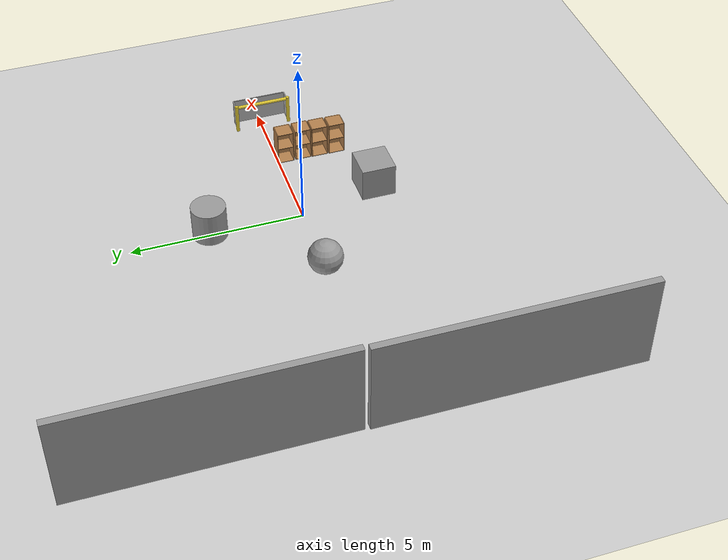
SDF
<sdf version="1.7">
 <world name="default">
  <light name="sun" type="directional">
   <pose>0 0 10 0 -0 0</pose>
   <diffuse>0.8 0.8 0.8 1</diffuse>
   <specular>0.2 0.2 0.2 1</specular>
   <attenuation>
    <range>1000</range>
    <constant>0.9</constant>
    <linear>0.01</linear>
    <quadratic>0.001</quadratic>
   </attenuation>
   <direction>-0.5 0.1 -0.9</direction>
   <spot><inner_angle>0</inner_angle><outer_angle>0</outer_angle><falloff>0</falloff></spot>
  </light>
  <model name="ground_plane">
   <static>1</static>
   <link name="link">
    <collision name="collision">
     <geometry><plane><normal>0 0 1</normal><size>100 100</size></plane></geometry>
     <surface>
      <contact><collide_bitmask>65535</collide_bitmask></contact>
      <friction><ode><mu>100</mu><mu2>50</mu2></ode></friction>
     </surface>
    </collision>
    <visual name="visual">
     <cast_shadows>0</cast_shadows>
     <geometry><plane><normal>0 0 1</normal><size>100 100</size></plane></geometry>
     <material>
      <script><uri>file://media/materials/scripts/gazebo.material</uri><name>Gazebo/Grey</name></script>
     </material>
    </visual>
   </link>
  </model>
  <gravity>0 0 -9.8</gravity>
  <magnetic_field>6e-06 2.3e-05 -4.2e-05</magnetic_field>
  <atmosphere type="adiabatic"/>
  <physics type="ode">
   <max_step_size>0.001</max_step_size>
   <real_time_factor>1</real_time_factor>
   <real_time_update_rate>1000</real_time_update_rate>
  </physics>
  <scene><ambient>0.4 0.4 0.4 1</ambient><background>0.7 0.7 0.7 1</background><shadows>1</shadows></scene>
  <audio><device>default</device></audio>
  <spherical_coordinates>
   <surface_model>EARTH_WGS84</surface_model>
   <latitude_deg>0</latitude_deg>
   <longitude_deg>0</longitude_deg>
   <elevation>0</elevation>
   <heading_deg>0</heading_deg>
  </spherical_coordinates>
  <model name="unit_sphere">
   <pose>-2.36502 0.054221 0.51 0 -0 0</pose>
   <link name="link">
    <inertial>
     <mass>1</mass>
     <inertia><ixx>0.1</ixx><ixy>0</ixy><ixz>0</ixz><iyy>0.1</iyy><iyz>0</iyz><izz>0.1</izz></inertia>
    </inertial>
    <collision name="collision"><geometry><sphere><radius>0.5</radius></sphere></geometry></collision>
    <visual name="visual">
     <geometry><sphere><radius>0.5</radius></sphere></geometry>
     <material>
      <script><name>Gazebo/Grey</name><uri>file://media/materials/scripts/gazebo.material</uri></script>
     </material>
    </visual>
   </link>
  </model>
  <model name="unit_cylinder">
   <pose>0.084518 2.70497 0.509991 -0 -0 -0</pose>
   <link name="link">
    <inertial>
     <mass>1</mass>
     <inertia><ixx>0.145833</ixx><ixy>0</ixy><ixz>0</ixz><iyy>0.145833</iyy><iyz>0</iyz><izz>0.125</izz></inertia>
    </inertial>
    <collision name="collision">
     <geometry><cylinder><radius>0.5</radius><length>1</length></cylinder></geometry>
    </collision>
    <visual name="visual">
     <geometry><cylinder><radius>0.5</radius><length>1</length></cylinder></geometry>
     <material>
      <script><name>Gazebo/Grey</name><uri>file://media/materials/scripts/gazebo.material</uri></script>
     </material>
    </visual>
   </link>
  </model>
  <model name="unit_box">
   <pose>0.628726 -2.33552 0.51 0 -0 0</pose>
   <link name="link">
    <inertial>
     <mass>1</mass>
     <inertia>
      <ixx>0.166667</ixx>
      <ixy>0</ixy>
      <ixz>0</ixz>
      <iyy>0.166667</iyy>
      <iyz>0</iyz>
      <izz>0.166667</izz>
     </inertia>
    </inertial>
    <collision name="collision"><geometry><box><size>1 1 1</size></box></geometry></collision>
    <visual name="visual">
     <geometry><box><size>1 1 1</size></box></geometry>
     <material>
      <script><name>Gazebo/Grey</name><uri>file://media/materials/scripts/gazebo.material</uri></script>
     </material>
    </visual>
   </link>
  </model>
  <model name="cabinet">
   <static>1</static>
   <link name="cabinet_bottom_plate">
    <inertial>
     <pose>0 0 -1 0 -0 0</pose>
     <inertia><ixx>2.05</ixx><ixy>0</ixy><ixz>0</ixz><iyy>2.05</iyy><iyz>0</iyz><izz>2.05</izz></inertia>
     <mass>25</mass>
    </inertial>
    <collision name="cabinet_bottom_plate_geom">
     <pose>0 0 0.01 0 -0 0</pose>
     <geometry><box><size>0.45 0.45 0.02</size></box></geometry>
    </collision>
    <visual name="cabinet_bottom_plate_geom_visual">
     <pose>0 0 0.01 0 -0 0</pose>
     <geometry><box><size>0.45 0.45 0.02</size></box></geometry>
     <material>
      <script><uri>file://media/materials/scripts/gazebo.material</uri><name>Gazebo/Wood</name></script>
     </material>
    </visual>
    <collision name="cabinet_bottom_plate_geom_cabinet_back_plate">
     <pose>0.235 0 0.51 0 -0 0</pose>
     <geometry><box><size>0.02 0.45 1.02</size></box></geometry>
    </collision>
    <visual name="cabinet_bottom_plate_geom_cabinet_back_plate_visual">
     <pose>0.235 0 0.51 0 -0 0</pose>
     <geometry><box><size>0.02 0.45 1.02</size></box></geometry>
     <material>
      <script><uri>file://media/materials/scripts/gazebo.material</uri><name>Gazebo/Wood</name></script>
     </material>
    </visual>
    <collision name="cabinet_bottom_plate_geom_cabinet_left_plate">
     <pose>0 0.235 0.51 0 -0 0</pose>
     <geometry><box><size>0.45 0.02 1.02</size></box></geometry>
    </collision>
    <visual name="cabinet_bottom_plate_geom_cabinet_left_plate_visual">
     <pose>0 0.235 0.51 0 -0 0</pose>
     <geometry><box><size>0.45 0.02 1.02</size></box></geometry>
     <material>
      <script><uri>file://media/materials/scripts/gazebo.material</uri><name>Gazebo/Wood</name></script>
     </material>
    </visual>
    <collision name="cabinet_bottom_plate_geom_cabinet_middle_plate">
     <pose>0 0 0.51 0 -0 0</pose>
     <geometry><box><size>0.45 0.45 0.02</size></box></geometry>
    </collision>
    <visual name="cabinet_bottom_plate_geom_cabinet_middle_plate_visual">
     <pose>0 0 0.51 0 -0 0</pose>
     <geometry><box><size>0.45 0.45 0.02</size></box></geometry>
     <material>
      <script><uri>file://media/materials/scripts/gazebo.material</uri><name>Gazebo/Wood</name></script>
     </material>
    </visual>
    <collision name="cabinet_bottom_plate_geom_cabinet_right_plate">
     <pose>0 -0.235 0.51 0 -0 0</pose>
     <geometry><box><size>0.45 0.02 1.02</size></box></geometry>
    </collision>
    <visual name="cabinet_bottom_plate_geom_cabinet_right_plate_visual">
     <pose>0 -0.235 0.51 0 -0 0</pose>
     <geometry><box><size>0.45 0.02 1.02</size></box></geometry>
     <material>
      <script><uri>file://media/materials/scripts/gazebo.material</uri><name>Gazebo/Wood</name></script>
     </material>
    </visual>
    <collision name="cabinet_bottom_plate_geom_cabinet_top_plate">
     <pose>0 0 1.01 0 -0 0</pose>
     <geometry><box><size>0.45 0.45 0.02</size></box></geometry>
    </collision>
    <visual name="cabinet_bottom_plate_geom_cabinet_top_plate_visual">
     <pose>0 0 1.01 0 -0 0</pose>
     <geometry><box><size>0.45 0.45 0.02</size></box></geometry>
     <material>
      <script><uri>file://media/materials/scripts/gazebo.material</uri><name>Gazebo/Wood</name></script>
     </material>
    </visual>
   </link>
   <pose>2.77229 -0.77064 0 0 -0 0</pose>
  </model>
  <model name="cabinet_0">
   <static>1</static>
   <link name="cabinet_bottom_plate">
    <inertial>
     <pose>0 0 -1 0 -0 0</pose>
     <inertia><ixx>2.05</ixx><ixy>0</ixy><ixz>0</ixz><iyy>2.05</iyy><iyz>0</iyz><izz>2.05</izz></inertia>
     <mass>25</mass>
    </inertial>
    <collision name="cabinet_bottom_plate_geom">
     <pose>0 0 0.01 0 -0 0</pose>
     <geometry><box><size>0.45 0.45 0.02</size></box></geometry>
    </collision>
    <visual name="cabinet_bottom_plate_geom_visual">
     <pose>0 0 0.01 0 -0 0</pose>
     <geometry><box><size>0.45 0.45 0.02</size></box></geometry>
     <material>
      <script><uri>file://media/materials/scripts/gazebo.material</uri><name>Gazebo/Wood</name></script>
     </material>
    </visual>
    <collision name="cabinet_bottom_plate_geom_cabinet_back_plate">
     <pose>0.235 0 0.51 0 -0 0</pose>
     <geometry><box><size>0.02 0.45 1.02</size></box></geometry>
    </collision>
    <visual name="cabinet_bottom_plate_geom_cabinet_back_plate_visual">
     <pose>0.235 0 0.51 0 -0 0</pose>
     <geometry><box><size>0.02 0.45 1.02</size></box></geometry>
     <material>
      <script><uri>file://media/materials/scripts/gazebo.material</uri><name>Gazebo/Wood</name></script>
     </material>
    </visual>
    <collision name="cabinet_bottom_plate_geom_cabinet_left_plate">
     <pose>0 0.235 0.51 0 -0 0</pose>
     <geometry><box><size>0.45 0.02 1.02</size></box></geometry>
    </collision>
    <visual name="cabinet_bottom_plate_geom_cabinet_left_plate_visual">
     <pose>0 0.235 0.51 0 -0 0</pose>
     <geometry><box><size>0.45 0.02 1.02</size></box></geometry>
     <material>
      <script><uri>file://media/materials/scripts/gazebo.material</uri><name>Gazebo/Wood</name></script>
     </material>
    </visual>
    <collision name="cabinet_bottom_plate_geom_cabinet_middle_plate">
     <pose>0 0 0.51 0 -0 0</pose>
     <geometry><box><size>0.45 0.45 0.02</size></box></geometry>
    </collision>
    <visual name="cabinet_bottom_plate_geom_cabinet_middle_plate_visual">
     <pose>0 0 0.51 0 -0 0</pose>
     <geometry><box><size>0.45 0.45 0.02</size></box></geometry>
     <material>
      <script><uri>file://media/materials/scripts/gazebo.material</uri><name>Gazebo/Wood</name></script>
     </material>
    </visual>
    <collision name="cabinet_bottom_plate_geom_cabinet_right_plate">
     <pose>0 -0.235 0.51 0 -0 0</pose>
     <geometry><box><size>0.45 0.02 1.02</size></box></geometry>
    </collision>
    <visual name="cabinet_bottom_plate_geom_cabinet_right_plate_visual">
     <pose>0 -0.235 0.51 0 -0 0</pose>
     <geometry><box><size>0.45 0.02 1.02</size></box></geometry>
     <material>
      <script><uri>file://media/materials/scripts/gazebo.material</uri><name>Gazebo/Wood</name></script>
     </material>
    </visual>
    <collision name="cabinet_bottom_plate_geom_cabinet_top_plate">
     <pose>0 0 1.01 0 -0 0</pose>
     <geometry><box><size>0.45 0.45 0.02</size></box></geometry>
    </collision>
    <visual name="cabinet_bottom_plate_geom_cabinet_top_plate_visual">
     <pose>0 0 1.01 0 -0 0</pose>
     <geometry><box><size>0.45 0.45 0.02</size></box></geometry>
     <material>
      <script><uri>file://media/materials/scripts/gazebo.material</uri><name>Gazebo/Wood</name></script>
     </material>
    </visual>
   </link>
   <pose>2.74775 -1.80669 0 0 -0 0</pose>
  </model>
  <model name="cabinet_1">
   <static>1</static>
   <link name="cabinet_bottom_plate">
    <inertial>
     <pose>0 0 -1 0 -0 0</pose>
     <inertia><ixx>2.05</ixx><ixy>0</ixy><ixz>0</ixz><iyy>2.05</iyy><iyz>0</iyz><izz>2.05</izz></inertia>
     <mass>25</mass>
    </inertial>
    <collision name="cabinet_bottom_plate_geom">
     <pose>0 0 0.01 0 -0 0</pose>
     <geometry><box><size>0.45 0.45 0.02</size></box></geometry>
    </collision>
    <visual name="cabinet_bottom_plate_geom_visual">
     <pose>0 0 0.01 0 -0 0</pose>
     <geometry><box><size>0.45 0.45 0.02</size></box></geometry>
     <material>
      <script><uri>file://media/materials/scripts/gazebo.material</uri><name>Gazebo/Wood</name></script>
     </material>
    </visual>
    <collision name="cabinet_bottom_plate_geom_cabinet_back_plate">
     <pose>0.235 0 0.51 0 -0 0</pose>
     <geometry><box><size>0.02 0.45 1.02</size></box></geometry>
    </collision>
    <visual name="cabinet_bottom_plate_geom_cabinet_back_plate_visual">
     <pose>0.235 0 0.51 0 -0 0</pose>
     <geometry><box><size>0.02 0.45 1.02</size></box></geometry>
     <material>
      <script><uri>file://media/materials/scripts/gazebo.material</uri><name>Gazebo/Wood</name></script>
     </material>
    </visual>
    <collision name="cabinet_bottom_plate_geom_cabinet_left_plate">
     <pose>0 0.235 0.51 0 -0 0</pose>
     <geometry><box><size>0.45 0.02 1.02</size></box></geometry>
    </collision>
    <visual name="cabinet_bottom_plate_geom_cabinet_left_plate_visual">
     <pose>0 0.235 0.51 0 -0 0</pose>
     <geometry><box><size>0.45 0.02 1.02</size></box></geometry>
     <material>
      <script><uri>file://media/materials/scripts/gazebo.material</uri><name>Gazebo/Wood</name></script>
     </material>
    </visual>
    <collision name="cabinet_bottom_plate_geom_cabinet_middle_plate">
     <pose>0 0 0.51 0 -0 0</pose>
     <geometry><box><size>0.45 0.45 0.02</size></box></geometry>
    </collision>
    <visual name="cabinet_bottom_plate_geom_cabinet_middle_plate_visual">
     <pose>0 0 0.51 0 -0 0</pose>
     <geometry><box><size>0.45 0.45 0.02</size></box></geometry>
     <material>
      <script><uri>file://media/materials/scripts/gazebo.material</uri><name>Gazebo/Wood</name></script>
     </material>
    </visual>
    <collision name="cabinet_bottom_plate_geom_cabinet_right_plate">
     <pose>0 -0.235 0.51 0 -0 0</pose>
     <geometry><box><size>0.45 0.02 1.02</size></box></geometry>
    </collision>
    <visual name="cabinet_bottom_plate_geom_cabinet_right_plate_visual">
     <pose>0 -0.235 0.51 0 -0 0</pose>
     <geometry><box><size>0.45 0.02 1.02</size></box></geometry>
     <material>
      <script><uri>file://media/materials/scripts/gazebo.material</uri><name>Gazebo/Wood</name></script>
     </material>
    </visual>
    <collision name="cabinet_bottom_plate_geom_cabinet_top_plate">
     <pose>0 0 1.01 0 -0 0</pose>
     <geometry><box><size>0.45 0.45 0.02</size></box></geometry>
    </collision>
    <visual name="cabinet_bottom_plate_geom_cabinet_top_plate_visual">
     <pose>0 0 1.01 0 -0 0</pose>
     <geometry><box><size>0.45 0.45 0.02</size></box></geometry>
     <material>
      <script><uri>file://media/materials/scripts/gazebo.material</uri><name>Gazebo/Wood</name></script>
     </material>
    </visual>
   </link>
   <pose>2.76051 -0.233842 0 0 -0 0</pose>
  </model>
  <model name="cabinet_2">
   <static>1</static>
   <link name="cabinet_bottom_plate">
    <inertial>
     <pose>0 0 -1 0 -0 0</pose>
     <inertia><ixx>2.05</ixx><ixy>0</ixy><ixz>0</ixz><iyy>2.05</iyy><iyz>0</iyz><izz>2.05</izz></inertia>
     <mass>25</mass>
    </inertial>
    <collision name="cabinet_bottom_plate_geom">
     <pose>0 0 0.01 0 -0 0</pose>
     <geometry><box><size>0.45 0.45 0.02</size></box></geometry>
    </collision>
    <visual name="cabinet_bottom_plate_geom_visual">
     <pose>0 0 0.01 0 -0 0</pose>
     <geometry><box><size>0.45 0.45 0.02</size></box></geometry>
     <material>
      <script><uri>file://media/materials/scripts/gazebo.material</uri><name>Gazebo/Wood</name></script>
     </material>
    </visual>
    <collision name="cabinet_bottom_plate_geom_cabinet_back_plate">
     <pose>0.235 0 0.51 0 -0 0</pose>
     <geometry><box><size>0.02 0.45 1.02</size></box></geometry>
    </collision>
    <visual name="cabinet_bottom_plate_geom_cabinet_back_plate_visual">
     <pose>0.235 0 0.51 0 -0 0</pose>
     <geometry><box><size>0.02 0.45 1.02</size></box></geometry>
     <material>
      <script><uri>file://media/materials/scripts/gazebo.material</uri><name>Gazebo/Wood</name></script>
     </material>
    </visual>
    <collision name="cabinet_bottom_plate_geom_cabinet_left_plate">
     <pose>0 0.235 0.51 0 -0 0</pose>
     <geometry><box><size>0.45 0.02 1.02</size></box></geometry>
    </collision>
    <visual name="cabinet_bottom_plate_geom_cabinet_left_plate_visual">
     <pose>0 0.235 0.51 0 -0 0</pose>
     <geometry><box><size>0.45 0.02 1.02</size></box></geometry>
     <material>
      <script><uri>file://media/materials/scripts/gazebo.material</uri><name>Gazebo/Wood</name></script>
     </material>
    </visual>
    <collision name="cabinet_bottom_plate_geom_cabinet_middle_plate">
     <pose>0 0 0.51 0 -0 0</pose>
     <geometry><box><size>0.45 0.45 0.02</size></box></geometry>
    </collision>
    <visual name="cabinet_bottom_plate_geom_cabinet_middle_plate_visual">
     <pose>0 0 0.51 0 -0 0</pose>
     <geometry><box><size>0.45 0.45 0.02</size></box></geometry>
     <material>
      <script><uri>file://media/materials/scripts/gazebo.material</uri><name>Gazebo/Wood</name></script>
     </material>
    </visual>
    <collision name="cabinet_bottom_plate_geom_cabinet_right_plate">
     <pose>0 -0.235 0.51 0 -0 0</pose>
     <geometry><box><size>0.45 0.02 1.02</size></box></geometry>
    </collision>
    <visual name="cabinet_bottom_plate_geom_cabinet_right_plate_visual">
     <pose>0 -0.235 0.51 0 -0 0</pose>
     <geometry><box><size>0.45 0.02 1.02</size></box></geometry>
     <material>
      <script><uri>file://media/materials/scripts/gazebo.material</uri><name>Gazebo/Wood</name></script>
     </material>
    </visual>
    <collision name="cabinet_bottom_plate_geom_cabinet_top_plate">
     <pose>0 0 1.01 0 -0 0</pose>
     <geometry><box><size>0.45 0.45 0.02</size></box></geometry>
    </collision>
    <visual name="cabinet_bottom_plate_geom_cabinet_top_plate_visual">
     <pose>0 0 1.01 0 -0 0</pose>
     <geometry><box><size>0.45 0.45 0.02</size></box></geometry>
     <material>
      <script><uri>file://media/materials/scripts/gazebo.material</uri><name>Gazebo/Wood</name></script>
     </material>
    </visual>
   </link>
   <pose>2.7592 -1.28112 0 0 -0 0</pose>
  </model>
  <model name="grey_wall">
   <static>1</static>
   <link name="link">
    <pose>0 0 1.4 0 -0 0</pose>
    <collision name="collision"><geometry><box><size>7.5 0.2 2.8</size></box></geometry></collision>
    <visual name="visual">
     <cast_shadows>0</cast_shadows>
     <geometry><box><size>7.5 0.2 2.8</size></box></geometry>
     <material>
      <script>
       <uri>model://grey_wall/materials/scripts</uri>
       <uri>model://grey_wall/materials/textures</uri>
       <name>vrc/grey_wall</name>
      </script>
     </material>
    </visual>
   </link>
   <pose>-8.06459 -3.04285 0 0 0 -1.58056</pose>
  </model>
  <model name="grey_wall_clone">
   <static>1</static>
   <link name="link">
    <pose>0 0 1.4 0 -0 0</pose>
    <collision name="collision"><geometry><box><size>7.5 0.2 2.8</size></box></geometry></collision>
    <visual name="visual">
     <cast_shadows>0</cast_shadows>
     <geometry><box><size>7.5 0.2 2.8</size></box></geometry>
     <material>
      <script>
       <uri>model://grey_wall/materials/scripts</uri>
       <uri>model://grey_wall/materials/textures</uri>
       <name>vrc/grey_wall</name>
      </script>
     </material>
    </visual>
   </link>
   <pose>-7.95011 4.58195 0 0 0 -1.58056</pose>
  </model>
  <model name="RoboCup 2014 SPL Goal">
   <static>1</static>
   <link name="left_post">
    <pose>0 0.8 0.45 0 -0 0</pose>
    <collision name="collision">
     <geometry><cylinder><radius>0.05</radius><length>0.9</length></cylinder></geometry>
    </collision>
    <visual name="visual">
     <geometry><cylinder><radius>0.05</radius><length>0.9</length></cylinder></geometry>
     <material>
      <script><uri>file://media/materials/scripts/gazebo.material</uri><name>Gazebo/ZincYellow</name></script>
     </material>
    </visual>
   </link>
   <link name="left_support_horiz_lower">
    <pose>0.24 0.8 0.01 0 -0 0</pose>
    <collision name="collision"><geometry><box><size>0.38 0.02 0.02</size></box></geometry></collision>
    <visual name="visual">
     <geometry><box><size>0.38 0.02 0.02</size></box></geometry>
     <material>
      <script><uri>file://media/materials/scripts/gazebo.material</uri><name>Gazebo/White</name></script>
     </material>
    </visual>
   </link>
   <link name="left_support_horiz_upper">
    <pose>0.24 0.8 0.79 0 -0 0</pose>
    <collision name="collision"><geometry><box><size>0.38 0.02 0.02</size></box></geometry></collision>
    <visual name="visual">
     <geometry><box><size>0.38 0.02 0.02</size></box></geometry>
     <material>
      <script><uri>file://media/materials/scripts/gazebo.material</uri><name>Gazebo/White</name></script>
     </material>
    </visual>
   </link>
   <link name="left_support_vertical">
    <pose>0.44 0.8 0.4 3.14159 1.57079 3.14159</pose>
    <collision name="collision"><geometry><box><size>0.8 0.02 0.02</size></box></geometry></collision>
    <visual name="visual">
     <geometry><box><size>0.8 0.02 0.02</size></box></geometry>
     <material>
      <script><uri>file://media/materials/scripts/gazebo.material</uri><name>Gazebo/White</name></script>
     </material>
    </visual>
   </link>
   <link name="right_support_horiz_lower">
    <pose>0.24 -0.8 0.01 0 -0 0</pose>
    <collision name="collision"><geometry><box><size>0.38 0.02 0.02</size></box></geometry></collision>
    <visual name="visual">
     <geometry><box><size>0.38 0.02 0.02</size></box></geometry>
     <material>
      <script><uri>file://media/materials/scripts/gazebo.material</uri><name>Gazebo/White</name></script>
     </material>
    </visual>
   </link>
   <link name="right_support_horiz_upper">
    <pose>0.24 -0.8 0.79 0 -0 0</pose>
    <collision name="collision"><geometry><box><size>0.38 0.02 0.02</size></box></geometry></collision>
    <visual name="visual">
     <geometry><box><size>0.38 0.02 0.02</size></box></geometry>
     <material>
      <script><uri>file://media/materials/scripts/gazebo.material</uri><name>Gazebo/White</name></script>
     </material>
    </visual>
   </link>
   <link name="right_support_vertical">
    <pose>0.44 -0.8 0.4 3.14159 1.57079 3.14159</pose>
    <collision name="collision"><geometry><box><size>0.8 0.02 0.02</size></box></geometry></collision>
    <visual name="visual">
     <geometry><box><size>0.8 0.02 0.02</size></box></geometry>
     <material>
      <script><uri>file://media/materials/scripts/gazebo.material</uri><name>Gazebo/White</name></script>
     </material>
    </visual>
   </link>
   <link name="center_support_horiz_lower">
    <pose>0.44 0 0.01 3.14159 1.57079 3.14159</pose>
    <collision name="collision"><geometry><box><size>0.02 1.58 0.02</size></box></geometry></collision>
    <visual name="visual">
     <geometry><box><size>0.02 1.58 0.02</size></box></geometry>
     <material>
      <script><uri>file://media/materials/scripts/gazebo.material</uri><name>Gazebo/White</name></script>
     </material>
    </visual>
   </link>
   <link name="center_support_horiz_upper">
    <pose>0.44 0 0.79 3.14159 1.57079 3.14159</pose>
    <collision name="collision"><geometry><box><size>0.02 1.58 0.02</size></box></geometry></collision>
    <visual name="visual">
     <geometry><box><size>0.02 1.58 0.02</size></box></geometry>
     <material>
      <script><uri>file://media/materials/scripts/gazebo.material</uri><name>Gazebo/White</name></script>
     </material>
    </visual>
   </link>
   <link name="right_post">
    <pose>0 -0.8 0.45 0 -0 0</pose>
    <collision name="collision">
     <geometry><cylinder><radius>0.05</radius><length>0.9</length></cylinder></geometry>
    </collision>
    <visual name="visual">
     <geometry><cylinder><radius>0.05</radius><length>0.9</length></cylinder></geometry>
     <material>
      <script><uri>file://media/materials/scripts/gazebo.material</uri><name>Gazebo/ZincYellow</name></script>
     </material>
    </visual>
   </link>
   <link name="crossbar">
    <pose>0 0 0.85 1.57 1.57 0</pose>
    <collision name="collision">
     <geometry><cylinder><radius>0.05</radius><length>1.5</length></cylinder></geometry>
    </collision>
    <visual name="visual">
     <geometry><cylinder><radius>0.05</radius><length>1.5</length></cylinder></geometry>
     <material>
      <script><uri>file://media/materials/scripts/gazebo.material</uri><name>Gazebo/ZincYellow</name></script>
     </material>
    </visual>
   </link>
   <link name="center_net">
    <pose>0.44 0 0.4 0 -0 0</pose>
    <collision name="collision"><geometry><box><size>0.01 1.6 0.8</size></box></geometry></collision>
    <visual name="visual">
     <geometry><box><size>0.01 1.6 0.8</size></box></geometry>
     <material>
      <script>
       <uri>model://robocup09_spl_field/materials/scripts/</uri>
       <uri>model://robocup09_spl_field/materials/textures/</uri>
       <name>RoboCup/Net</name>
      </script>
     </material>
    </visual>
   </link>
   <link name="left_net">
    <pose>0.24 0.8 0.4 0 -0 0</pose>
    <collision name="collision"><geometry><box><size>0.38 0.01 0.76</size></box></geometry></collision>
    <visual name="visual">
     <geometry><box><size>0.38 0.01 0.76</size></box></geometry>
     <material>
      <script>
       <uri>model://robocup09_spl_field/materials/scripts/</uri>
       <uri>model://robocup09_spl_field/materials/textures/</uri>
       <name>RoboCup/Net</name>
      </script>
     </material>
    </visual>
   </link>
   <link name="right_net">
    <pose>0.24 -0.8 0.4 0 -0 0</pose>
    <collision name="collision"><geometry><box><size>0.38 0.01 0.76</size></box></geometry></collision>
    <visual name="visual">
     <geometry><box><size>0.38 0.01 0.76</size></box></geometry>
     <material>
      <script>
       <uri>model://robocup09_spl_field/materials/scripts/</uri>
       <uri>model://robocup09_spl_field/materials/textures/</uri>
       <name>RoboCup/Net</name>
      </script>
     </material>
    </visual>
   </link>
   <pose>4.48215 -0.049908 0 0 -0 0</pose>
  </model>
 </world>
</sdf>
